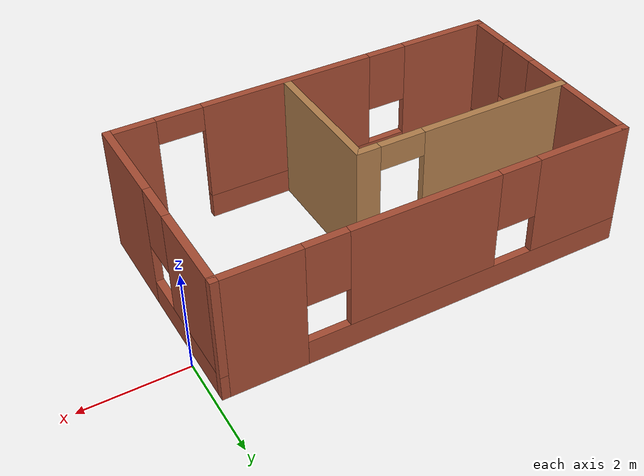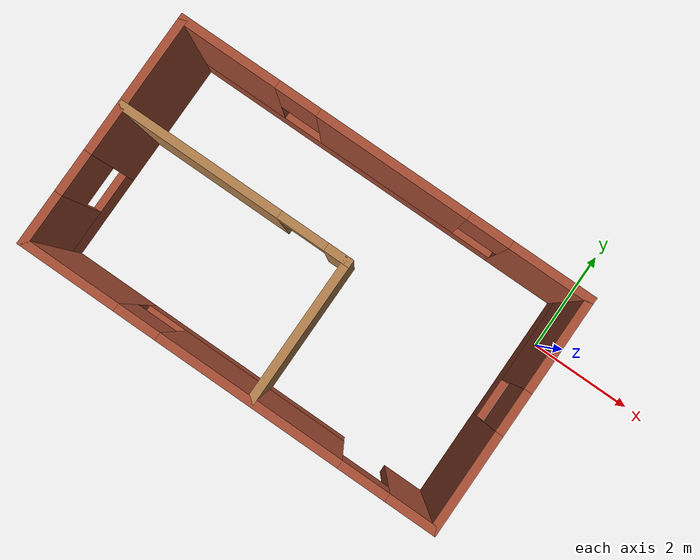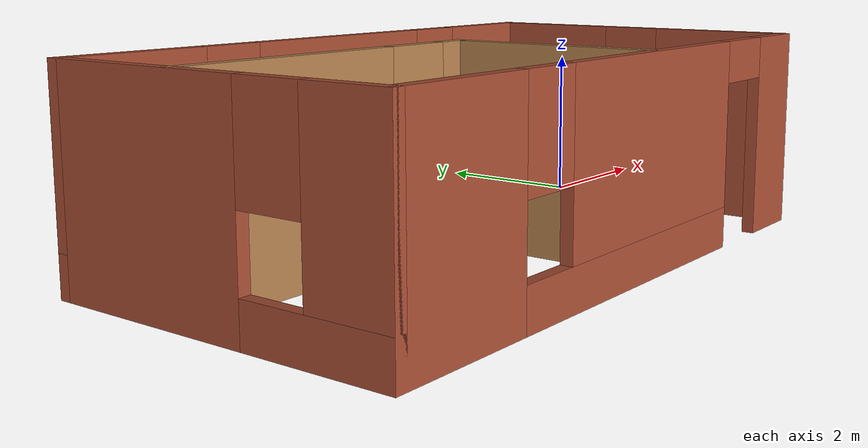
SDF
<?xml version='1.0'?>
<sdf version='1.6'>
  <model name='New_world'>
    <pose frame=''>-4.11456 -1.32543 0 0 -0 0</pose>
    <link name='Wall_0'>
      <pose frame=''>-3.925 0 0 0 0 -1.5708</pose>
      <visual name='Wall_0_Visual_0'>
        <pose frame=''>-0.90901 0 1.25 0 -0 0</pose>
        <geometry>
          <box>
            <size>2.68198 0.15 2.5</size>
          </box>
        </geometry>
        <material>
          <script>
            <uri>file://media/materials/scripts/gazebo.material</uri>
            <name>Gazebo/Bricks</name>
          </script>
          <ambient>1 1 1 1</ambient>
        </material>
        <meta>
          <layer>0</layer>
        </meta>
      </visual>
      <collision name='Wall_0_Collision_0'>
        <geometry>
          <box>
            <size>2.68198 0.15 2.5</size>
          </box>
        </geometry>
        <pose frame=''>-0.90901 0 1.25 0 -0 0</pose>
      </collision>
      <visual name='Wall_0_Visual_1'>
        <pose frame=''>1.34099 0 0.25 0 -0 0</pose>
        <geometry>
          <box>
            <size>1.81802 0.15 0.5</size>
          </box>
        </geometry>
        <material>
          <script>
            <uri>file://media/materials/scripts/gazebo.material</uri>
            <name>Gazebo/Bricks</name>
          </script>
          <ambient>1 1 1 1</ambient>
        </material>
        <meta>
          <layer>0</layer>
        </meta>
      </visual>
      <collision name='Wall_0_Collision_1'>
        <geometry>
          <box>
            <size>1.81802 0.15 0.5</size>
          </box>
        </geometry>
        <pose frame=''>1.34099 0 0.25 0 -0 0</pose>
      </collision>
      <visual name='Wall_0_Visual_2'>
        <pose frame=''>1.74099 0 1.5 0 -0 0</pose>
        <geometry>
          <box>
            <size>1.01802 0.15 2</size>
          </box>
        </geometry>
        <material>
          <script>
            <uri>file://media/materials/scripts/gazebo.material</uri>
            <name>Gazebo/Bricks</name>
          </script>
          <ambient>1 1 1 1</ambient>
        </material>
        <meta>
          <layer>0</layer>
        </meta>
      </visual>
      <collision name='Wall_0_Collision_2'>
        <geometry>
          <box>
            <size>1.01802 0.15 2</size>
          </box>
        </geometry>
        <pose frame=''>1.74099 0 1.5 0 -0 0</pose>
      </collision>
      <visual name='Wall_0_Visual_3'>
        <pose frame=''>0.831979 0 1.9 0 -0 0</pose>
        <geometry>
          <box>
            <size>0.8 0.15 1.2</size>
          </box>
        </geometry>
        <material>
          <script>
            <uri>file://media/materials/scripts/gazebo.material</uri>
            <name>Gazebo/Bricks</name>
          </script>
          <ambient>1 1 1 1</ambient>
        </material>
        <meta>
          <layer>0</layer>
        </meta>
      </visual>
      <collision name='Wall_0_Collision_3'>
        <geometry>
          <box>
            <size>0.8 0.15 1.2</size>
          </box>
        </geometry>
        <pose frame=''>0.831979 0 1.9 0 -0 0</pose>
      </collision>
    </link>
    <link name='Wall_1'>
      <pose frame=''>0 -2.175 0 0 -0 0</pose>
      <visual name='Wall_1_Visual_0'>
        <pose frame=''>-3.0638 0 1.25 0 -0 0</pose>
        <geometry>
          <box>
            <size>1.87241 0.15 2.5</size>
          </box>
        </geometry>
        <material>
          <script>
            <uri>file://media/materials/scripts/gazebo.material</uri>
            <name>Gazebo/Bricks</name>
          </script>
          <ambient>0.760784 0.662745 0.627451 1</ambient>
        </material>
        <meta>
          <layer>0</layer>
        </meta>
      </visual>
      <collision name='Wall_1_Collision_0'>
        <geometry>
          <box>
            <size>1.87241 0.15 2.5</size>
          </box>
        </geometry>
        <pose frame=''>-3.0638 0 1.25 0 -0 0</pose>
      </collision>
      <visual name='Wall_1_Visual_1'>
        <pose frame=''>3.52392 0 1.25 0 -0 0</pose>
        <geometry>
          <box>
            <size>0.952169 0.15 2.5</size>
          </box>
        </geometry>
        <material>
          <script>
            <uri>file://media/materials/scripts/gazebo.material</uri>
            <name>Gazebo/Bricks</name>
          </script>
          <ambient>0.760784 0.662745 0.627451 1</ambient>
        </material>
        <meta>
          <layer>0</layer>
        </meta>
      </visual>
      <collision name='Wall_1_Collision_1'>
        <geometry>
          <box>
            <size>0.952169 0.15 2.5</size>
          </box>
        </geometry>
        <pose frame=''>3.52392 0 1.25 0 -0 0</pose>
      </collision>
      <visual name='Wall_1_Visual_2'>
        <pose frame=''>0.010119 0 0.25 0 -0 0</pose>
        <geometry>
          <box>
            <size>4.27542 0.15 0.5</size>
          </box>
        </geometry>
        <material>
          <script>
            <uri>file://media/materials/scripts/gazebo.material</uri>
            <name>Gazebo/Bricks</name>
          </script>
          <ambient>0.760784 0.662745 0.627451 1</ambient>
        </material>
        <meta>
          <layer>0</layer>
        </meta>
      </visual>
      <collision name='Wall_1_Collision_2'>
        <geometry>
          <box>
            <size>4.27542 0.15 0.5</size>
          </box>
        </geometry>
        <pose frame=''>0.010119 0 0.25 0 -0 0</pose>
      </collision>
      <visual name='Wall_1_Visual_3'>
        <pose frame=''>0.410119 0 1.5 0 -0 0</pose>
        <geometry>
          <box>
            <size>3.47542 0.15 2</size>
          </box>
        </geometry>
        <material>
          <script>
            <uri>file://media/materials/scripts/gazebo.material</uri>
            <name>Gazebo/Bricks</name>
          </script>
          <ambient>0.760784 0.662745 0.627451 1</ambient>
        </material>
        <meta>
          <layer>0</layer>
        </meta>
      </visual>
      <collision name='Wall_1_Collision_3'>
        <geometry>
          <box>
            <size>3.47542 0.15 2</size>
          </box>
        </geometry>
        <pose frame=''>0.410119 0 1.5 0 -0 0</pose>
      </collision>
      <visual name='Wall_1_Visual_4'>
        <pose frame=''>-1.72759 0 1.9 0 -0 0</pose>
        <geometry>
          <box>
            <size>0.8 0.15 1.2</size>
          </box>
        </geometry>
        <material>
          <script>
            <uri>file://media/materials/scripts/gazebo.material</uri>
            <name>Gazebo/Bricks</name>
          </script>
          <ambient>0.760784 0.662745 0.627451 1</ambient>
        </material>
        <meta>
          <layer>0</layer>
        </meta>
      </visual>
      <collision name='Wall_1_Collision_4'>
        <geometry>
          <box>
            <size>0.8 0.15 1.2</size>
          </box>
        </geometry>
        <pose frame=''>-1.72759 0 1.9 0 -0 0</pose>
      </collision>
      <visual name='Wall_1_Visual_5'>
        <pose frame=''>2.59783 0 2.25 0 -0 0</pose>
        <geometry>
          <box>
            <size>0.9 0.15 0.5</size>
          </box>
        </geometry>
        <material>
          <script>
            <uri>file://media/materials/scripts/gazebo.material</uri>
            <name>Gazebo/Bricks</name>
          </script>
          <ambient>0.760784 0.662745 0.627451 1</ambient>
        </material>
        <meta>
          <layer>0</layer>
        </meta>
      </visual>
      <collision name='Wall_1_Collision_5'>
        <geometry>
          <box>
            <size>0.9 0.15 0.5</size>
          </box>
        </geometry>
        <pose frame=''>2.59783 0 2.25 0 -0 0</pose>
      </collision>
    </link>
    <link name='Wall_2'>
      <pose frame=''>3.925 0 0 0 -0 1.5708</pose>
      <visual name='Wall_2_Visual_0'>
        <pose frame=''>-1.31307 0 1.25 0 -0 0</pose>
        <geometry>
          <box>
            <size>1.87385 0.15 2.5</size>
          </box>
        </geometry>
        <material>
          <script>
            <uri>file://media/materials/scripts/gazebo.material</uri>
            <name>Gazebo/Bricks</name>
          </script>
          <ambient>1 0.764706 0.305882 1</ambient>
        </material>
        <meta>
          <layer>0</layer>
        </meta>
      </visual>
      <collision name='Wall_2_Collision_0'>
        <geometry>
          <box>
            <size>1.87385 0.15 2.5</size>
          </box>
        </geometry>
        <pose frame=''>-1.31307 0 1.25 0 -0 0</pose>
      </collision>
      <visual name='Wall_2_Visual_1'>
        <pose frame=''>0.936927 0 0.25 0 -0 0</pose>
        <geometry>
          <box>
            <size>2.62615 0.15 0.5</size>
          </box>
        </geometry>
        <material>
          <script>
            <uri>file://media/materials/scripts/gazebo.material</uri>
            <name>Gazebo/Bricks</name>
          </script>
          <ambient>1 0.764706 0.305882 1</ambient>
        </material>
        <meta>
          <layer>0</layer>
        </meta>
      </visual>
      <collision name='Wall_2_Collision_1'>
        <geometry>
          <box>
            <size>2.62615 0.15 0.5</size>
          </box>
        </geometry>
        <pose frame=''>0.936927 0 0.25 0 -0 0</pose>
      </collision>
      <visual name='Wall_2_Visual_2'>
        <pose frame=''>1.33693 0 1.5 0 -0 0</pose>
        <geometry>
          <box>
            <size>1.82615 0.15 2</size>
          </box>
        </geometry>
        <material>
          <script>
            <uri>file://media/materials/scripts/gazebo.material</uri>
            <name>Gazebo/Bricks</name>
          </script>
          <ambient>1 0.764706 0.305882 1</ambient>
        </material>
        <meta>
          <layer>0</layer>
        </meta>
      </visual>
      <collision name='Wall_2_Collision_2'>
        <geometry>
          <box>
            <size>1.82615 0.15 2</size>
          </box>
        </geometry>
        <pose frame=''>1.33693 0 1.5 0 -0 0</pose>
      </collision>
      <visual name='Wall_2_Visual_3'>
        <pose frame=''>0.023853 0 1.9 0 -0 0</pose>
        <geometry>
          <box>
            <size>0.8 0.15 1.2</size>
          </box>
        </geometry>
        <material>
          <script>
            <uri>file://media/materials/scripts/gazebo.material</uri>
            <name>Gazebo/Bricks</name>
          </script>
          <ambient>1 0.764706 0.305882 1</ambient>
        </material>
        <meta>
          <layer>0</layer>
        </meta>
      </visual>
      <collision name='Wall_2_Collision_3'>
        <geometry>
          <box>
            <size>0.8 0.15 1.2</size>
          </box>
        </geometry>
        <pose frame=''>0.023853 0 1.9 0 -0 0</pose>
      </collision>
    </link>
    <link name='Wall_3'>
      <pose frame=''>0 2.175 0 0 -0 3.14159</pose>
      <visual name='Wall_3_Visual_0'>
        <pose frame=''>-3.20978 0 1.25 0 -0 0</pose>
        <geometry>
          <box>
            <size>1.58043 0.15 2.5</size>
          </box>
        </geometry>
        <material>
          <script>
            <uri>file://media/materials/scripts/gazebo.material</uri>
            <name>Gazebo/Bricks</name>
          </script>
          <ambient>0.435294 0.796078 0.67451 1</ambient>
        </material>
        <meta>
          <layer>0</layer>
        </meta>
      </visual>
      <collision name='Wall_3_Collision_0'>
        <geometry>
          <box>
            <size>1.58043 0.15 2.5</size>
          </box>
        </geometry>
        <pose frame=''>-3.20978 0 1.25 0 -0 0</pose>
      </collision>
      <visual name='Wall_3_Visual_1'>
        <pose frame=''>0.790217 0 0.25 0 -0 0</pose>
        <geometry>
          <box>
            <size>6.41957 0.15 0.5</size>
          </box>
        </geometry>
        <material>
          <script>
            <uri>file://media/materials/scripts/gazebo.material</uri>
            <name>Gazebo/Bricks</name>
          </script>
          <ambient>0.435294 0.796078 0.67451 1</ambient>
        </material>
        <meta>
          <layer>0</layer>
        </meta>
      </visual>
      <collision name='Wall_3_Collision_1'>
        <geometry>
          <box>
            <size>6.41957 0.15 0.5</size>
          </box>
        </geometry>
        <pose frame=''>0.790217 0 0.25 0 -0 0</pose>
      </collision>
      <visual name='Wall_3_Visual_2'>
        <pose frame=''>-0.169118 0 1.5 0 -0 0</pose>
        <geometry>
          <box>
            <size>2.9009 0.15 2</size>
          </box>
        </geometry>
        <material>
          <script>
            <uri>file://media/materials/scripts/gazebo.material</uri>
            <name>Gazebo/Bricks</name>
          </script>
          <ambient>0.435294 0.796078 0.67451 1</ambient>
        </material>
        <meta>
          <layer>0</layer>
        </meta>
      </visual>
      <collision name='Wall_3_Collision_2'>
        <geometry>
          <box>
            <size>2.9009 0.15 2</size>
          </box>
        </geometry>
        <pose frame=''>-0.169118 0 1.5 0 -0 0</pose>
      </collision>
      <visual name='Wall_3_Visual_3'>
        <pose frame=''>3.04067 0 1.5 0 -0 0</pose>
        <geometry>
          <box>
            <size>1.91867 0.15 2</size>
          </box>
        </geometry>
        <material>
          <script>
            <uri>file://media/materials/scripts/gazebo.material</uri>
            <name>Gazebo/Bricks</name>
          </script>
          <ambient>0.435294 0.796078 0.67451 1</ambient>
        </material>
        <meta>
          <layer>0</layer>
        </meta>
      </visual>
      <collision name='Wall_3_Collision_3'>
        <geometry>
          <box>
            <size>1.91867 0.15 2</size>
          </box>
        </geometry>
        <pose frame=''>3.04067 0 1.5 0 -0 0</pose>
      </collision>
      <visual name='Wall_3_Visual_4'>
        <pose frame=''>-2.01957 0 1.9 0 -0 0</pose>
        <geometry>
          <box>
            <size>0.8 0.15 1.2</size>
          </box>
        </geometry>
        <material>
          <script>
            <uri>file://media/materials/scripts/gazebo.material</uri>
            <name>Gazebo/Bricks</name>
          </script>
          <ambient>0.435294 0.796078 0.67451 1</ambient>
        </material>
        <meta>
          <layer>0</layer>
        </meta>
      </visual>
      <collision name='Wall_3_Collision_4'>
        <geometry>
          <box>
            <size>0.8 0.15 1.2</size>
          </box>
        </geometry>
        <pose frame=''>-2.01957 0 1.9 0 -0 0</pose>
      </collision>
      <visual name='Wall_3_Visual_5'>
        <pose frame=''>1.68133 0 1.9 0 -0 0</pose>
        <geometry>
          <box>
            <size>0.8 0.15 1.2</size>
          </box>
        </geometry>
        <material>
          <script>
            <uri>file://media/materials/scripts/gazebo.material</uri>
            <name>Gazebo/Bricks</name>
          </script>
          <ambient>0.435294 0.796078 0.67451 1</ambient>
        </material>
        <meta>
          <layer>0</layer>
        </meta>
      </visual>
      <collision name='Wall_3_Collision_5'>
        <geometry>
          <box>
            <size>0.8 0.15 1.2</size>
          </box>
        </geometry>
        <pose frame=''>1.68133 0 1.9 0 -0 0</pose>
      </collision>
    </link>
    <link name='Wall_5'>
      <pose frame=''>-1.72687 0.486466 0 0 -0 0</pose>
      <visual name='Wall_5_Visual_0'>
        <pose frame=''>-0.691139 0 1.25 0 -0 0</pose>
        <geometry>
          <box>
            <size>3.11772 0.15 2.5</size>
          </box>
        </geometry>
        <material>
          <script>
            <uri>file://media/materials/scripts/gazebo.material</uri>
            <name>Gazebo/Wood</name>
          </script>
          <ambient>1 1 1 1</ambient>
        </material>
        <meta>
          <layer>0</layer>
        </meta>
      </visual>
      <collision name='Wall_5_Collision_0'>
        <geometry>
          <box>
            <size>3.11772 0.15 2.5</size>
          </box>
        </geometry>
        <pose frame=''>-0.691139 0 1.25 0 -0 0</pose>
      </collision>
      <visual name='Wall_5_Visual_1'>
        <pose frame=''>2.00886 0 1.25 0 -0 0</pose>
        <geometry>
          <box>
            <size>0.482278 0.15 2.5</size>
          </box>
        </geometry>
        <material>
          <script>
            <uri>file://media/materials/scripts/gazebo.material</uri>
            <name>Gazebo/Wood</name>
          </script>
          <ambient>1 1 1 1</ambient>
        </material>
        <meta>
          <layer>0</layer>
        </meta>
      </visual>
      <collision name='Wall_5_Collision_1'>
        <geometry>
          <box>
            <size>0.482278 0.15 2.5</size>
          </box>
        </geometry>
        <pose frame=''>2.00886 0 1.25 0 -0 0</pose>
      </collision>
      <visual name='Wall_5_Visual_2'>
        <pose frame=''>1.31772 0 2.25 0 -0 0</pose>
        <geometry>
          <box>
            <size>0.9 0.15 0.5</size>
          </box>
        </geometry>
        <material>
          <script>
            <uri>file://media/materials/scripts/gazebo.material</uri>
            <name>Gazebo/Wood</name>
          </script>
          <ambient>1 1 1 1</ambient>
        </material>
        <meta>
          <layer>0</layer>
        </meta>
      </visual>
      <collision name='Wall_5_Collision_2'>
        <geometry>
          <box>
            <size>0.9 0.15 0.5</size>
          </box>
        </geometry>
        <pose frame=''>1.31772 0 2.25 0 -0 0</pose>
      </collision>
    </link>
    <link name='Wall_6'>
      <collision name='Wall_6_Collision'>
        <geometry>
          <box>
            <size>2.75 0.15 2.5</size>
          </box>
        </geometry>
        <pose frame=''>0 0 1.25 0 -0 0</pose>
      </collision>
      <visual name='Wall_6_Visual'>
        <pose frame=''>0 0 1.25 0 -0 0</pose>
        <geometry>
          <box>
            <size>2.75 0.15 2.5</size>
          </box>
        </geometry>
        <material>
          <script>
            <uri>file://media/materials/scripts/gazebo.material</uri>
            <name>Gazebo/Wood</name>
          </script>
          <ambient>1 1 1 1</ambient>
        </material>
        <meta>
          <layer>0</layer>
        </meta>
      </visual>
      <pose frame=''>0.44813 -0.813534 0 0 0 -1.5708</pose>
    </link>
    <static>1</static>
  </model>
</sdf>
